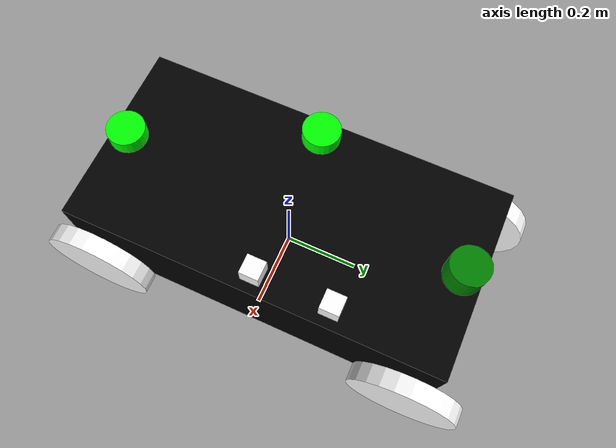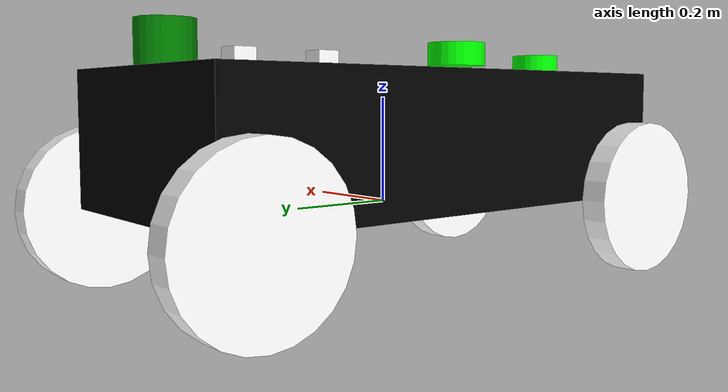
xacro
<?xml version = "1.0"?>
<robot xmlns:xacro="http://www.ros.org/wiki/xacro" name= "rover">

<xacro:include filename="$(find gazebo)/model/rover.gazebo"/>

<material name = "black">
    <color rgba = " 0 0 0 1"/>
</material>

<material name = "white">
    <color rgba = " 1 1 1 1"/>
</material>

<material name = "green">
    <color rgba = " 0 0.5 0 1"/>
</material>

<material name = "blue">
    <color rgba = " 0 0 0.5 1"/>
</material>

<material name = "red">
    <color rgba = " 0.5 0 0 1"/>
</material>

<link name = "dummy">
</link>

<joint name = "dummy_joint" type = "fixed">
<parent link = "dummy"/>
<child link = "base_link"/>
</joint>

    <link name = "base_link">
        <visual>
            <geometry>
                <box size = " 0.5 1 0.25"/>

            </geometry>
            <origin xyz = " 0 0 0.125" rpy = "0 0 0"/>
            <material name = "black"/>
        </visual>

    <collision>
            <geometry>
                <box size = " 0.5 1 0.25"/>

            </geometry>
            <origin xyz = " 0 0 0.125" rpy = "0 0 0"/>
    </collision>

    <inertial>
        <origin xyz = " 0 0 0.125" rpy = "0 0 0"/>
        <mass value= "2"/>
        <inertia ixx = "100" ixy = "0" ixz = "0" iyy = "100" izz = "100" iyz = "0"/>
    </inertial>

    </link>

<joint name = "left_front_wheel_joint" type = "continuous">
    <parent link = "base_link"/>
    <child link = "left_front_link"/>
    <origin xyz = "0.275 0.45 0" rpy = "0 0 0" />
    <axis xyz ="1 0 0"/>
    <limit effort = "10" velocity = "5"/>
    <dynamics damping = "1.0" friction = "1.0"/>

</joint>

    <link name = "left_front_link">
        <visual>
            <geometry>
                <cylinder radius = "0.15" length = "0.05"/>

            </geometry>
            <origin xyz = " 0 0 0" rpy = "0 1.57 0"/>
            <material name = "white"/>
        </visual>

    <collision>
            <geometry>
                <cylinder radius = "0.15" length = "0.05"/>

            </geometry>
            <origin xyz = " 0 0 0" rpy = "0 1.57 0"/>
    </collision>

    <inertial>
         <origin xyz = " 0 0 0" rpy = "0 1.57 0"/>
        <mass value= "0.5"/>
        <inertia ixx = "100" ixy = "0" ixz = "0" iyy = "100" izz = "100" iyz = "0"/>
    </inertial>

    </link>

<joint name = "right_front_wheel_joint" type = "continuous">
    <parent link = "base_link"/>
    <child link = "right_front_link"/>
    <origin xyz = "-0.275 0.45 0" rpy = "0 0 0" />
    <axis xyz ="1 0 0"/>
    <limit effort = "10" velocity = "5"/>
    <dynamics damping = "1.0" friction = "1.0"/>

</joint>

    <link name = "right_front_link">
        <visual>
            <geometry>
                <cylinder radius = "0.15" length = "0.05"/>

            </geometry>
            <origin xyz = " 0 0 0" rpy = "0 1.57 0"/>
            <material name = "white"/>
        </visual>

    <collision>
            <geometry>
                <cylinder radius = "0.15" length = "0.05"/>

            </geometry>
            <origin xyz = " 0 0 0" rpy = "0 1.57 0"/>
    </collision>

    <inertial>
         <origin xyz = " 0 0 0" rpy = "0 1.57 0"/>
        <mass value= "0.5"/>
        <inertia ixx = "100" ixy = "0" ixz = "0" iyy = "100" izz = "100" iyz = "0"/>
    </inertial>

    </link>

<joint name = "left_back_wheel_joint" type = "continuous">
    <parent link = "base_link"/>
    <child link = "left_back_link"/>
    <origin xyz = "0.275 -0.45 0" rpy = "0 0 0" />
    <axis xyz ="1 0 0"/>
    <limit effort = "10" velocity = "5"/>
    <dynamics damping = "1.0" friction = "1.0"/>

</joint>

    <link name = "left_back_link">
        <visual>
            <geometry>
                <cylinder radius = "0.15" length = "0.05"/>

            </geometry>
            <origin xyz = " 0 0 0" rpy = "0 1.57 0"/>
            <material name = "white"/>
        </visual>

     <collision>
            <geometry>
                <cylinder radius = "0.15" length = "0.05"/>

            </geometry>
            <origin xyz = " 0 0 0" rpy = "0 1.57 0"/>
    </collision>

    <inertial>
         <origin xyz = " 0 0 0" rpy = "0 1.57 0"/>
        <mass value= "0.5"/>
        <inertia ixx = "100" ixy = "0" ixz = "0" iyy = "100" izz = "100" iyz = "0"/>
    </inertial>

    </link>

<joint name = "right_back_wheel_joint" type = "continuous">
    <parent link = "base_link"/>
    <child link = "right_back_link"/>
    <origin xyz = "-0.275 -0.45 0" rpy = "0 0 0" />
    <axis xyz ="1 0 0"/>
    <limit effort = "10" velocity = "5"/>
    <dynamics damping = "1.0" friction = "1.0"/>

</joint>

    <link name = "right_back_link">
        <visual>
            <geometry>
                <cylinder radius = "0.15" length = "0.05"/>

            </geometry>
            <origin xyz = " 0 0 0" rpy = "0 1.57 0"/>
            <material name = "white"/>
        </visual>

     <collision>
            <geometry>
                <cylinder radius = "0.15" length = "0.05"/>

            </geometry>
            <origin xyz = " 0 0 0" rpy = "0 1.57 0"/>
    </collision>

    <inertial>
         <origin xyz = " 0 0 0" rpy = "0 1.57 0"/>
        <mass value= "0.5"/>
        <inertia ixx = "100" ixy = "0" ixz = "0" iyy = "100" izz = "100" iyz = "0"/>
    </inertial>

    </link>

<joint name = "lidar_joint" type = "fixed">
    <parent link = "base_link"/>
    <child link = "lidar_link"/>
    <origin xyz = "0 0.45 0.275" rpy = "0 0 0" />

</joint>

 <link name="lidar_link">
    <visual>
      <geometry>
        <cylinder radius="0.05" length="0.1"/>
      </geometry>
      <material name="green"/>
    </visual>
    <collision>
      <geometry>
        <cylinder radius="0.05" length="0.1"/>
      </geometry>
    </collision>
    <inertial>
      <mass value="0.5"/>
      <inertia ixx="0.01" ixy="0" ixz="0" iyy="0.01" iyz="0" izz="0.01"/>
    </inertial>
  </link>

  <!-- Gazebo Plugin for Lidar -->
  <gazebo reference="lidar_link">
    <sensor name="lidar_sensor" type="ray">
      <pose>0 0 0 0 0 0</pose>
      <visualize>true</visualize>
      <update_rate>10</update_rate>
      <ray>
        <scan>
          <horizontal>
            <samples>360</samples>
            <resolution>1</resolution>
            <min_angle>-3.14159</min_angle>
            <max_angle>3.14159</max_angle>
          </horizontal>
        </scan>
        <range>
          <min>0.1</min>
          <max>10.0</max>
          <resolution>0.01</resolution>
        </range>
        <noise>
          <type>gaussian</type>
          <mean>0.0</mean>
          <stddev>0.01</stddev>
        </noise>
      </ray>
      <plugin name="lidar_plugin" filename="libgazebo_ros_ray_sensor.so">
        <ros>
          <namespace>lidar</namespace>
          <remapping>~/out:=scan</remapping>
        </ros>
        <frame_name>lidar_link</frame_name>
      </plugin>
    </sensor>
  </gazebo>

<joint name = "imu_joint" type = "fixed">
    <parent link = "base_link"/>
    <child link = "imu_link"/>
    <origin xyz = "0 -0.45 0.275" rpy = "0 0 0" />

</joint>

  <!-- IMU Link -->
  <link name="imu_link">
    <visual>
      <geometry>
        <cylinder radius="0.05" length="0.04"/>
      </geometry>
       <origin xyz="0 0 0" rpy="0 0 0"/>
      <material name="black">
        <color rgba="0 1 0 1"/>
      </material>
    </visual>
    <collision>
      <geometry>
        <cylinder radius="0.05" length="0.04"/>
      </geometry>
    </collision>

  <gazebo reference="imu_link">
    <sensor name="imu_sensor" type="imu">
      <always_on>true</always_on>
      <update_rate>10.0</update_rate>
      <plugin name="imu_controller" filename="libgazebo_ros_imu_sensor.so">
        <ros>
          <remapping>imu_controller/out:=imu</remapping>
        </ros>
        <frame_name>imu_link</frame_name>
      </plugin>
    </sensor>
    <material>Gazebo/Grey</material>
  </gazebo>
  </link>

    <!-- GPS Sensor -->
  <link name="gps_link">
    <visual>
      <geometry>
        <cylinder radius="0.05" length="0.04"/>
      </geometry>
      <origin xyz="0 0 0" rpy="0 0 0"/>
      <material name="black">
        <color rgba="0 1 0 1"/>
      </material>
    </visual>
    <collision>
      <geometry>
        <cylinder radius="0.05" length="0.04"/>
      </geometry>
    </collision>

    </link>

<gazebo reference="gps_link">
    <sensor name="gps_sensor" type="gps">
        <always_on>true</always_on>
        <update_rate>1.0</update_rate>
        <plugin name="gps_controller" filename="libgazebo_ros_gps_sensor.so">
            <ros>

                <remapping>gps_controller/out:=gps</remapping>
            </ros>
            <frame_name>gps_link</frame_name>
        </plugin>
    </sensor>
    <material>Gazebo/Grey</material>
</gazebo>

<joint name = "gps_joint" type = "fixed">
    <parent link = "base_link"/>
    <child link = "gps_link"/>
    <origin xyz = "-0.2 0 0.275" rpy = "0 0 0" />

</joint>

<joint name = "camera_joint" type = "fixed">
    <parent link = "base_link"/>
    <child link = "camera_link"/>
    <origin xyz = "0.2 0 0.275" rpy = "0 0 0" />

</joint>

    <link name="camera_link">
        <visual>
            <geometry>
            <box size="0.05 0.05 0.05"/>
            </geometry>
            <material name="white"/>
        </visual>

         <gazebo reference="camera_link">
        <sensor type="depth" name="my_camera">
            <update_rate>20</update_rate>
            <visualize>true</visualize>
            <camera name="cam">
                <horizontal_fov>1.3962634</horizontal_fov>
                <image>
                    <width>640</width>
                    <height>480</height>
                    <format>R8B8G8</format>
                </image>
                <clip>
                    <near>0.02</near>
                    <far>300</far>
                </clip>
                <noise>
                    <type>gaussian</type>
                    <mean>0.0</mean>
                    <stddev>0.007</stddev>
                </noise>
            </camera>
            <plugin name="camera_controller" filename="libgazebo_ros_camera.so">
                <frame_name>camera_link_optical</frame_name>
                <min_depth>0.1</min_depth>
                <max_depth>500</max_depth>
            </plugin>
        </sensor>
    </gazebo>

    </link>

    <joint name="stereo" type="fixed">
        <parent link="base_link"/>
        <child link="stereo_link"/>
        <origin xyz="0.2 0.2 0.275" rpy="0 0 0"/>
    </joint>

    <link name="stereo_link">
        <visual>
            <geometry>
            <box size="0.05 0.05 0.05"/>
            </geometry>
            <origin xyz="0 0 0" rpy="0 0 0"/>
            <material name="white"/>
        </visual>
    </link>

    <gazebo reference="stereo_link">
    <sensor name="camera" type="depth">
        <always_on>true</always_on>
        <update_rate>15</update_rate>
        <pose>0 0 0 0 0 0</pose>
        <camera name="realsense_depth_camera">
            <horizontal_fov>1.46608</horizontal_fov>
            <image>
                <width>424</width>
                <height>240</height>
                <format>B8G8R8</format>
            </image>
            <clip>
                <near>0.05</near>
                <far>8</far>
            </clip>
        </camera>
        <plugin name="camera" filename="libgazebo_ros_camera.so">
            <ros>
                <namespace>d430</namespace>
                <remapping>camera/image_raw:=color/image_raw</remapping>
                <remapping>camera/depth/image_raw:=depth/image_rect_raw</remapping>
                <remapping>camera/camera_info:=camera_info</remapping>
                <remapping>camera/depth/camera_info:=depth/camera_info</remapping>
                <remapping>camera/points:=depth/points</remapping>
            </ros>
            <camera_name>camera</camera_name>
            <frame_name>stereo_link</frame_name>
            <hack_baseline>0.07</hack_baseline>
            <min_depth>0.05</min_depth>
            <max_depth>8.0</max_depth>
        </plugin>
    </sensor>
</gazebo>

</robot>
